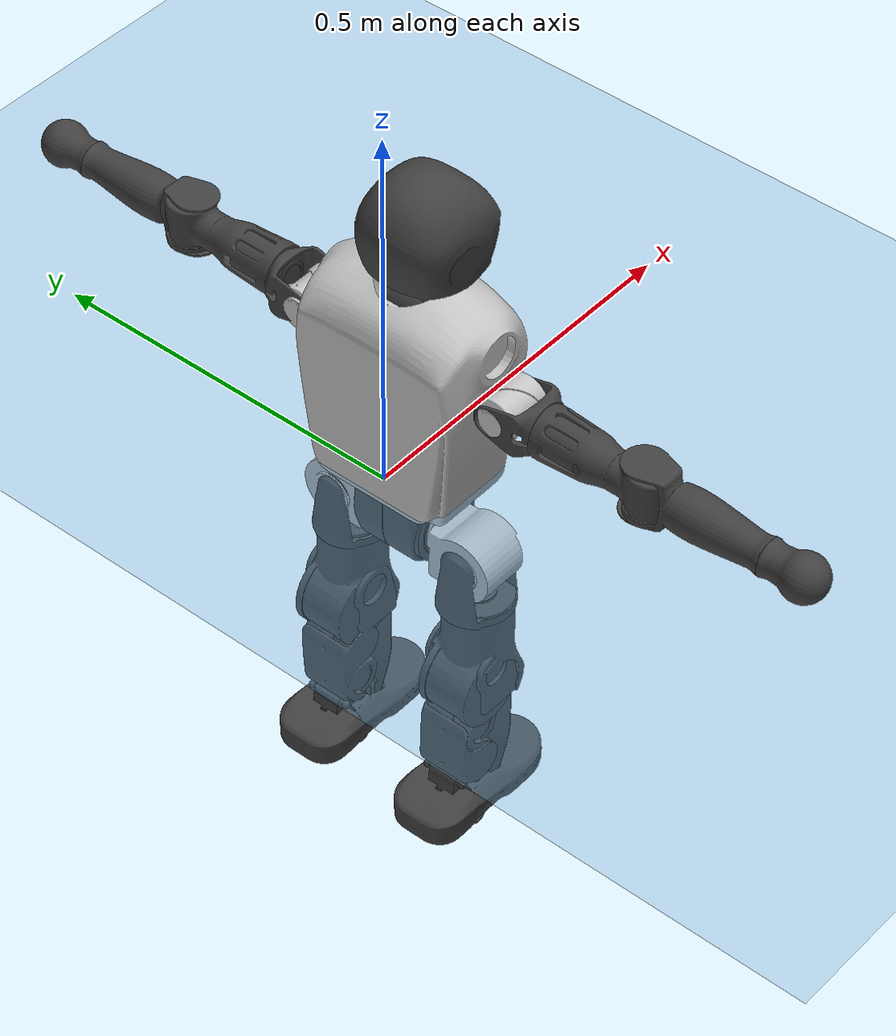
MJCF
<mujoco model="T1">
  <compiler angle="radian" assetdir="assets" balanceinertia="true" inertiafromgeom="false"/>

  <option timestep="0.005" density="1.2" viscosity="2e-05"/>

  <size nkey="1"/>

  <visual>
    <quality shadowsize="8192"/>
    <map shadowclip="0.5"/>
  </visual>

  <default>
    <default class="/">
      <joint armature="0.01" damping="0.01" frictionloss="0.1"/>
      <geom contype="0" conaffinity="0" group="1" solref="-1000 -80"/>
      <site size="0.01 0.005 0.005" group="5"/>
      <general forcelimited="true" biastype="affine" gainprm="25" biasprm="0 -25 -0.6"/>
      <default class="t1">
        <geom rgba="0.25 0.25 0.25 1"/>
        <default class="visual">
          <geom type="mesh" group="2"/>
        </default>
        <default class="collision">
          <geom group="3"/>
        </default>
        <default class="foot">
          <geom size="0.1115 0.05 0.015" type="box" condim="6" group="4" priority="1" solimp="0.015 1 0.015"/>
        </default>
        <default class="reward_collision_sphere">
          <geom group="5" rgba="1 0 0 1"/>
        </default>
      </default>
    </default>
  </default>

  <asset>
    <texture type="skybox" colorspace="auto" name="//unnamed_texture_0" builtin="gradient" rgb1="0.95 0.95 0.95" rgb2="0.95 0.95 0.95" width="100" height="600"/>
    <texture type="2d" colorspace="auto" name="texplane" builtin="checker" rgb1="0.345 0.575 0.748" rgb2="0.345 0.575 0.748" markrgb="1 1 1" width="512" height="512"/>
    <material name="MatPlane" class="/" texture="texplane" texuniform="true" texrepeat="2 2" specular="0.9"/>
    <mesh name="Trunk" class="/" file="Trunk.stl"/>
    <mesh name="H1" class="/" file="H1.stl"/>
    <mesh name="H2" class="/" file="H2.stl"/>
    <mesh name="AL1" class="/" file="AL1.stl"/>
    <mesh name="AL2" class="/" file="AL2.stl"/>
    <mesh name="AL3" class="/" file="AL3.stl"/>
    <mesh name="left_hand_link" class="/" file="left_hand_link.stl"/>
    <mesh name="AR1" class="/" file="AR1.stl"/>
    <mesh name="AR2" class="/" file="AR2.stl"/>
    <mesh name="AR3" class="/" file="AR3.stl"/>
    <mesh name="right_hand_link" class="/" file="right_hand_link.stl"/>
    <mesh name="Waist" class="/" file="Waist.stl"/>
    <mesh name="Hip_Pitch_Left" class="/" file="Hip_Pitch_Left.stl"/>
    <mesh name="Hip_Roll_Left" class="/" file="Hip_Roll_Left.stl"/>
    <mesh name="Hip_Yaw_Left" class="/" file="Hip_Yaw_Left.stl"/>
    <mesh name="Shank_Left" class="/" file="Shank_Left.stl"/>
    <mesh name="Ankle_Cross_Left" class="/" file="Ankle_Cross_Left.stl"/>
    <mesh name="left_foot_link" class="/" file="left_foot_link.stl"/>
    <mesh name="Hip_Pitch_Right" class="/" file="Hip_Pitch_Right.stl"/>
    <mesh name="Hip_Roll_Right" class="/" file="Hip_Roll_Right.stl"/>
    <mesh name="Hip_Yaw_Right" class="/" file="Hip_Yaw_Right.stl"/>
    <mesh name="Shank_Right" class="/" file="Shank_Right.stl"/>
    <mesh name="Ankle_Cross_Right" class="/" file="Ankle_Cross_Right.stl"/>
    <mesh name="right_foot_link" class="/" file="right_foot_link.stl"/>
  </asset>

  <worldbody>
    <geom name="floor" class="/" size="100 100 0.125" type="plane" group="0" material="MatPlane"/>
    <light name="toplight_shadow" class="/" pos="0 0 5" dir="0.0990148 0.0990148 -0.990148" type="directional" ambient="0.04 0.04 0.04" diffuse="0.55 0.55 0.55" specular="0.12 0.12 0.12"/>
    <light name="toplight_fill" class="/" pos="0 0 5" dir="0.0990148 0.0990148 -0.990148" type="directional" castshadow="false" ambient="0.04 0.04 0.04" diffuse="0.3 0.3 0.3" specular="0.08 0.08 0.08"/>
    <body name="trunk" childclass="t1" pos="0.000906644 0.000130062 0.001682" quat="1 3.50739e-05 -2.50911e-06 -1.17995e-05">
      <inertial pos="0.0485053 -0.000393114 0.0755835" quat="0.99985 0.00520969 -0.0102019 0.0129936" mass="7.49173" diaginertia="0.0542122 0.0583971 0.0120405"/>
      <joint name="//unnamed_joint_0" type="free" armature="0" damping="0" frictionloss="0"/>
      <geom name="//unnamed_geom_1" class="visual" rgba="0.76 0.76 0.76 1" mesh="Trunk"/>
      <geom name="//unnamed_geom_2" class="collision" size="0.0644239 0.0858986 0.128848" pos="0.0540624 0 0.0879408" type="box"/>
      <geom name="//unnamed_geom_3" class="reward_collision_sphere" size="0.0987834" pos="0.0540624 0 0.073284"/>
      <geom name="//unnamed_geom_4" class="reward_collision_sphere" size="0.0128848" pos="0.0540624 0.0801616 0"/>
      <geom name="//unnamed_geom_5" class="reward_collision_sphere" size="0.0128848" pos="0.0540624 -0.0801616 0"/>
      <geom name="//unnamed_geom_6" class="reward_collision_sphere" size="0.0128848" pos="0.0540624 0.100909 0.131911"/>
      <geom name="//unnamed_geom_7" class="reward_collision_sphere" size="0.0128848" pos="0.0540624 -0.100909 0.131911"/>
      <site name="imu" pos="-0.00280465 -0.00433812 0.013692" size="0.00858986"/>
      <camera name="track" pos="0 -1.88615 0" quat="0.707107 0.707107 0 0" mode="trackcom"/>
      <camera name="ego_camera" pos="0.109927 0 0.307793" quat="-0.5 -0.5 0.5 0.5"/>
      <body name="H1" pos="0.0524336 -0.00298385 0.178345" quat="0.999999 -0.000537885 0.000490276 0.00113617">
        <inertial pos="-0.00195626 -0.0025715 0.0408776" quat="0.769256 -0.0161985 -0.00452718 0.638719" mass="0.275605" diaginertia="0.000142725 0.000166212 3.16888e-05"/>
        <joint name="AAHead_yaw" pos="0 0 0" axis="0.00116285 0.0020419 0.999997" range="-1.52025 1.61826" armature="0.00935435" damping="0.0178848" frictionloss="0.0772684"/>
        <geom name="//unnamed_geom_8" class="visual" mesh="H1"/>
        <body name="H2" pos="-0.00139416 -0.000482973 0.0444107" quat="1 -0.000366373 0.000332864 7.7498e-05">
          <inertial pos="0.00606904 0.00125159 0.0746224" quat="0.986811 0.114052 -0.0742635 -0.087637" mass="0.392574" diaginertia="0.00123278 0.0013762 0.000357485"/>
          <joint name="Head_pitch" pos="0 0 0" axis="0.00944916 -0.999955 0.000234345" stiffness="0.00686844" range="-1.21151 0.395435" armature="0.00807818" damping="0" frictionloss="0.0863235"/>
          <geom name="//unnamed_geom_9" class="visual" mesh="H2"/>
          <geom name="//unnamed_geom_10" class="collision" size="0.0687189" pos="0.00901041 0 0.0806124"/>
          <geom name="//unnamed_geom_11" class="reward_collision_sphere" size="0.0773087" pos="0.0180208 0 0.073284"/>
        </body>
      </body>
      <body name="AL1" pos="0.0510569 0.100269 0.15969" quat="1 0.000759884 -0.000522844 -0.000243989">
        <inertial pos="0.00226091 0.0451674 0.000325241" quat="0.508476 0.490618 -0.513167 0.487244" mass="0.326441" diaginertia="0.000796164 0.00095368 6.34412e-05"/>
        <joint name="Left_Shoulder_Pitch" pos="0 0 0" axis="-0.00990457 0.999948 -0.00259484" stiffness="0.00396081" range="-3.32299 1.1692" armature="0.00909905" damping="0.00968827" frictionloss="0.083778"/>
        <geom name="//unnamed_geom_12" class="visual" rgba="0.76 0.76 0.76 1" mesh="AL1"/>
        <body name="AL2" pos="0.00315458 0.0453598 0.00191824" quat="1 8.5694e-05 -0.000202062 -0.000111844">
          <inertial pos="0.00685213 0.0369154 -0.00193619" quat="0.48567 0.513026 -0.489073 0.511602" mass="0.100499" diaginertia="0.000240675 0.00026413 3.69388e-05"/>
          <joint name="Left_Shoulder_Roll" pos="0 0 0" axis="-0.999935 0.00913301 0.0068793" range="-1.62507 1.7163" armature="0.00979226" damping="0.0090688" frictionloss="0.0748685"/>
          <geom name="//unnamed_geom_13" class="visual" mesh="AL2"/>
          <body name="AL3" pos="0.00424998 0.058055 0.000687036" quat="1 0.000436116 -0.000191215 0.0002781">
            <inertial pos="-0.000388996 0.0797514 -0.000299004" quat="0.704193 0.709979 0.00557017 0.00328794" mass="0.648613" diaginertia="0.00774578 0.00947706 0.000127197"/>
            <joint name="Left_Elbow_Pitch" pos="0 0 0" axis="-0.00312354 -0.99998 0.00552312" stiffness="0.0173739" range="-2.32867 2.24842" armature="0.00812923" damping="0.0103168" frictionloss="0.0822512"/>
            <geom name="//unnamed_geom_14" class="visual" mesh="AL3"/>
            <geom name="//unnamed_geom_15" class="collision" size="0.0257696 0.0644239" pos="0 0.0471539 0" quat="0.707105 0.707108 0 0" type="cylinder"/>
            <geom name="//unnamed_geom_16" class="reward_collision_sphere" size="0.0309235"/>
            <body name="left_hand_link" pos="0.000904975 0.138494 0.00332372" quat="1 0.000140038 5.47035e-05 9.82816e-06">
              <inertial pos="0.000288562 0.100839 -0.000108862" quat="0.705475 0.708732 0.000324034 -0.00204506" mass="0.211011" diaginertia="0.00507765 0.00606372 4.43817e-05"/>
              <joint name="Left_Elbow_Yaw" pos="0 0 0" axis="0.00594685 0.00404198 0.999974" range="-2.44229 0.0287458" armature="0.00853342" damping="0.000803193" frictionloss="0.083514"/>
              <geom name="//unnamed_geom_17" class="visual" mesh="left_hand_link"/>
              <geom name="//unnamed_geom_18" class="collision" size="0.0257696 0.0751613" pos="0 0.1226 0" quat="0.707105 0.707108 0 0" type="cylinder"/>
              <geom name="//unnamed_geom_19" class="reward_collision_sphere" size="0.0429493"/>
              <geom name="//unnamed_geom_20" class="reward_collision_sphere" size="0.0300645" pos="0 0.103739 0"/>
              <geom name="//unnamed_geom_21" class="reward_collision_sphere" size="0.0300645" pos="0 0.202762 0"/>
            </body>
          </body>
        </body>
      </body>
      <body name="AR1" pos="0.0506749 -0.0976014 0.160884" quat="1 -0.000254968 0.00041069 -0.000592975">
        <inertial pos="-0.00206751 -0.0439871 0.0004799" quat="0.503243 0.493249 -0.505695 0.49772" mass="0.348739" diaginertia="0.000804243 0.000946705 6.28337e-05"/>
        <joint name="Right_Shoulder_Pitch" pos="0 0 0" axis="0.0148652 -0.999884 -0.00319815" stiffness="0.000381545" range="-1.2243 3.29482" armature="0.00900719" damping="0.01349" frictionloss="0.0839572"/>
        <geom name="//unnamed_geom_22" class="visual" rgba="0.76 0.76 0.76 1" mesh="AR1"/>
        <body name="AR2" pos="-0.000340313 -0.0422572 -0.000821084" quat="0.999999 0.000520652 0.000197982 -0.00135425">
          <inertial pos="0.000593522 -0.0329541 -0.00212452" quat="0.50578 0.48255 -0.512298 0.498882" mass="0.105503" diaginertia="0.000244176 0.000268829 3.76214e-05"/>
          <joint name="Right_Shoulder_Roll" pos="0 0 0" axis="-0.999995 0.000829088 -0.00303461" stiffness="0.00878292" range="-1.6853 1.56576" armature="0.00817847" damping="0.0175995" frictionloss="0.0835226"/>
          <geom name="//unnamed_geom_23" class="visual" mesh="AR2"/>
          <body name="AR3" pos="-0.00283147 -0.0576881 0.000853069" quat="1 1.71767e-05 5.08716e-05 -1.65334e-05">
            <inertial pos="-0.000406127 -0.082497 0.00040208" quat="0.710832 0.703357 -0.00265256 -0.000733864" mass="0.626466" diaginertia="0.00740764 0.00988604 0.000128982"/>
            <joint name="Right_Elbow_Pitch" pos="0 0 0" axis="0.000795129 0.999999 -0.00148992" range="-2.27192 2.27499" armature="0.00820985" damping="0.0185806" frictionloss="0.0861828"/>
            <geom name="//unnamed_geom_24" class="visual" mesh="AR3"/>
            <geom name="//unnamed_geom_25" class="collision" size="0.0257696 0.0644239" pos="0 -0.0471539 0" quat="0.707105 0.707108 0 0" type="cylinder"/>
            <geom name="//unnamed_geom_26" class="reward_collision_sphere" size="0.0309235"/>
            <body name="right_hand_link" pos="-0.000903211 -0.138848 0.00204187" quat="0.999999 -0.00106582 -0.00101938 0.000277335">
              <inertial pos="0.000989497 -0.103519 0.000917762" quat="0.70504 0.709163 -0.00222135 -0.00130102" mass="0.210243" diaginertia="0.0047109 0.00601988 4.53086e-05"/>
              <joint name="Right_Elbow_Yaw" pos="0 0 0" axis="-0.00140913 0.00310059 0.999994" range="-0.0326921 2.46457" armature="0.00838669" damping="0.00461074" frictionloss="0.0855287"/>
              <geom name="//unnamed_geom_27" class="visual" mesh="right_hand_link"/>
              <geom name="//unnamed_geom_28" class="collision" size="0.0257696 0.0751613" pos="0 -0.1226 0" quat="0.707105 0.707108 0 0" type="cylinder"/>
              <geom name="//unnamed_geom_29" class="reward_collision_sphere" size="0.0429493"/>
              <geom name="//unnamed_geom_30" class="reward_collision_sphere" size="0.0300645" pos="0 -0.103739 0"/>
              <geom name="//unnamed_geom_31" class="reward_collision_sphere" size="0.0300645" pos="0 -0.202762 0"/>
            </body>
          </body>
        </body>
      </body>
      <body name="Waist" pos="0.0579848 0.00273001 -0.0861551" quat="1 -0.000109035 -0.000503558 0.000449447">
        <inertial pos="0.00181305 4.53414e-05 0.00663485" quat="0.982268 0.00799347 -0.18692 0.0121108" mass="1.6509" diaginertia="0.00312958 0.00386361 0.000991621"/>
        <joint name="Waist" pos="0 0 0" axis="-0.00578281 0.0061139 0.999965" stiffness="0.00080772" range="-1.58309 1.62228" armature="0.00813475" damping="0.0225777" frictionloss="0.0866105"/>
        <geom name="//unnamed_geom_32" class="visual" mesh="Waist"/>
        <body name="Hip_Pitch_Left" pos="0.000465864 0.100677 0.000341321" quat="1 4.29871e-05 -2.07854e-05 -2.71938e-05">
          <inertial pos="-0.00117316 -0.00734193 -0.0138253" quat="0.975201 0.220719 0.0162381 0.00142847" mass="0.616524" diaginertia="0.00102739 0.00104116 0.000255779"/>
          <joint name="Left_Hip_Pitch" pos="0 0 0" axis="-0.0144288 0.999875 -0.00652431" stiffness="0.00985204" range="-1.79347 1.62219" armature="0.00857612" damping="0.0282221" frictionloss="0.0854615"/>
          <geom name="//unnamed_geom_33" class="visual" rgba="0.76 0.76 0.76 1" mesh="Hip_Pitch_Left"/>
          <body name="Hip_Roll_Left" pos="0.00314284 -0.00149669 -0.017287" quat="1 0.000116189 -0.000263568 0.000107952">
            <inertial pos="0.00132222 0.000682149 -0.0419933" quat="0.706263 -0.00160831 -0.0053123 0.707928" mass="0.242367" diaginertia="0.00103267 0.00110698 0.00010603"/>
            <joint name="Left_Hip_Roll" pos="0 0 0" axis="-0.999978 0.00283047 0.00597928" range="-1.52547 0.160958" armature="0.00883717" damping="0.0116955" frictionloss="0.0930622"/>
            <geom name="//unnamed_geom_34" class="visual" mesh="Hip_Roll_Left"/>
            <geom name="//unnamed_geom_35" class="reward_collision_sphere" size="0.0472442"/>
            <body name="Hip_Yaw_Left" pos="-0.00147763 0.00140201 -0.0596445" quat="0.999999 -0.000161382 0.000976213 -0.000626773">
              <inertial pos="-0.00715454 -0.000115414 -0.064702" quat="0.697068 -0.0362208 -0.0317408 0.715386" mass="1.32384" diaginertia="0.015358 0.0190251 0.000566521"/>
              <joint name="Left_Hip_Yaw" pos="0 0 0" axis="-0.000912531 0.00332167 -0.999994" stiffness="0.00695477" range="-1.0132 1.02299" armature="0.00882724" damping="0" frictionloss="0.0859921"/>
              <geom name="//unnamed_geom_36" class="visual" mesh="Hip_Yaw_Left"/>
              <geom name="//unnamed_geom_37" class="collision" size="0.0429493 0.0687189" type="cylinder"/>
              <body name="Shank_Left" pos="-0.0114414 -0.00242585 -0.100302" quat="0.999999 -0.000569007 -0.000579424 -0.000990658">
                <inertial pos="-0.00449254 0.00263053 -0.0910656" quat="0.996917 0.00182792 -0.026106 0.0739755" mass="1.12492" diaginertia="0.0197613 0.0263909 0.000386197"/>
                <joint name="Left_Knee_Pitch" pos="0 0 0" axis="-0.00335575 0.999984 -0.00459359" range="0.0485778 2.32571" armature="0.00955267" damping="0.0129811" frictionloss="0.0908636"/>
                <geom name="//unnamed_geom_38" class="visual" mesh="Shank_Left"/>
                <geom name="//unnamed_geom_39" class="collision" size="0.0429493 0.0644239" pos="0 0 -0.0879408" type="cylinder"/>
                <geom name="//unnamed_geom_40" class="reward_collision_sphere" size="0.0558341"/>
                <body name="Ankle_Cross_Left" pos="-0.00247302 -0.00180054 -0.204448" quat="0.999999 0.000246792 0.000912294 0.00086551">
                  <inertial pos="-0.00354695 0.00258447 -0.00517713" quat="0.442895 0.561248 0.544735 0.438301" mass="0.047075" diaginertia="1.75838e-05 1.87382e-05 2.33655e-06"/>
                  <joint name="Left_Ankle_Pitch" pos="0 0 0" axis="0.0143637 0.999895 0.00202988" range="-0.850341 0.402956" armature="0.00736254" damping="0.0269386" frictionloss="0.0898594"/>
                  <geom name="//unnamed_geom_41" class="visual" mesh="Ankle_Cross_Left"/>
                  <body name="left_foot_link" pos="0.000909665 -0.00160322 -0.00909646" quat="0.999999 0.000604336 -0.00106162 -0.000200048">
                    <inertial pos="-0.00241337 -0.000322973 -0.00517356" quat="0.000473641 0.624028 -0.00277365 0.781397" mass="0.416264" diaginertia="0.00163817 0.00177208 0.000472918"/>
                    <joint name="Left_Ankle_Roll" pos="0 0 0" axis="-0.999893 0.00342639 0.0142457" stiffness="0.00229439" range="-0.488718 0.387884" armature="0.008774" damping="0" frictionloss="0.0861402"/>
                    <geom name="//unnamed_geom_42" class="visual" mesh="left_foot_link"/>
                    <geom name="left_foot" class="foot" size="0.103607 0.0355998 0.0143979" pos="0.00901041 0 -0.0109926"/>
                    <geom name="//unnamed_geom_44" class="reward_collision_sphere" size="0.0446673" pos="0.00901041 0 -0.0109926"/>
                    <geom name="//unnamed_geom_45" class="reward_collision_sphere" size="0.0257696" pos="0.0855989 -0.0216908 -0.0109926"/>
                    <geom name="//unnamed_geom_46" class="reward_collision_sphere" size="0.0257696" pos="-0.0630728 -0.0216908 -0.0109926"/>
                    <site name="left_foot" class="foot" pos="0.00901041 0 -0.0109926" size="0.00858986"/>
                  </body>
                </body>
              </body>
            </body>
          </body>
        </body>
        <body name="Hip_Pitch_Right" pos="-0.00414892 -0.100113 -0.0012893" quat="0.999999 -0.00024171 0.0013237 -0.000552828">
          <inertial pos="5.37996e-05 0.00970119 -0.0129518" quat="0.974466 -0.223834 0.0164688 -0.00659687" mass="0.665165" diaginertia="0.00109831 0.00111329 0.000276798"/>
          <joint name="Right_Hip_Pitch" pos="0 0 0" axis="-0.00186797 -0.999964 -0.00829555" range="-1.55766 1.78023" armature="0.00909511" damping="0.000510805" frictionloss="0.0975761"/>
          <geom name="//unnamed_geom_47" class="visual" rgba="0.76 0.76 0.76 1" mesh="Hip_Pitch_Right"/>
          <body name="Hip_Roll_Right" pos="-0.00088378 -0.00252817 -0.0124974" quat="1 -0.000276412 -0.000111865 -0.000298053">
            <inertial pos="0.000793985 0.00173163 -0.0415667" quat="0.706712 0.00150369 -0.00292959 0.707493" mass="0.238256" diaginertia="0.000981109 0.00113038 0.00010673"/>
            <joint name="Right_Hip_Roll" pos="0 0 0" axis="-0.999987 -0.00307592 0.00397755" range="-0.213399 1.60683" armature="0.00830307" damping="0.0158391" frictionloss="0.086132"/>
            <geom name="//unnamed_geom_48" class="visual" mesh="Hip_Roll_Right"/>
            <geom name="//unnamed_geom_49" class="reward_collision_sphere" size="0.0472442"/>
            <body name="Hip_Yaw_Right" pos="-9.45464e-06 -0.00159765 -0.0617719" quat="1 0.000221841 -0.000121606 0.000280281">
              <inertial pos="-0.00330304 -0.00179896 -0.0634601" quat="0.716086 -0.0244777 -0.0429874 0.696257" mass="1.43486" diaginertia="0.01556 0.0188543 0.000572941"/>
              <joint name="Right_Hip_Yaw" pos="0 0 0" axis="0.0159391 -0.0089824 -0.999833" stiffness="0.0108617" range="-0.975618 1.02059" armature="0.00854433" damping="0.00865097" frictionloss="0.0836004"/>
              <geom name="//unnamed_geom_50" class="visual" mesh="Hip_Yaw_Right"/>
              <geom name="//unnamed_geom_51" class="collision" size="0.0429493 0.0687189" type="cylinder"/>
              <body name="Shank_Right" pos="-0.0131635 0.00219667 -0.100882" quat="1 6.81061e-05 -0.000201453 0.000133424">
                <inertial pos="-0.00428451 0.00232377 -0.0910677" quat="0.999139 -0.00448595 -0.0257803 -0.0322069" mass="1.11668" diaginertia="0.0207057 0.0255486 0.000402735"/>
                <joint name="Right_Knee_Pitch" pos="0 0 0" axis="0.0113218 -0.999925 -0.00467391" stiffness="0.00873646" range="-2.38475 0.00424567" armature="0.00836845" damping="0.0225196" frictionloss="0.0979493"/>
                <geom name="//unnamed_geom_52" class="visual" mesh="Shank_Right"/>
                <geom name="//unnamed_geom_53" class="collision" size="0.0429493 0.0644239" pos="0 0 -0.0879408" type="cylinder"/>
                <geom name="//unnamed_geom_54" class="reward_collision_sphere" size="0.0558341"/>
                <body name="Ankle_Cross_Right" pos="-0.00181598 -8.11259e-05 -0.207153" quat="1 -0.000388998 0.000232225 0.00018379">
                  <inertial pos="-0.00319436 -6.29288e-05 -0.0061557" quat="0.446349 0.556404 0.552783 0.430834" mass="0.0445573" diaginertia="1.68018e-05 1.86815e-05 2.32506e-06"/>
                  <joint name="Right_Ankle_Pitch" pos="0 0 0" axis="-0.00410616 -0.999991 -0.0011249" stiffness="0.0139015" range="-0.348081 0.827331" armature="0.00928195" damping="0" frictionloss="0.0888596"/>
                  <geom name="//unnamed_geom_55" class="visual" mesh="Ankle_Cross_Right"/>
                  <body name="right_foot_link" pos="0.00152237 0.000327131 -0.00660791" quat="0.999999 -0.000553994 0.0012564 4.64299e-05">
                    <inertial pos="0.00192532 0.000372182 -0.00775043" quat="0.000704941 0.62256 -0.00192848 0.78257" mass="0.456171" diaginertia="0.00160875 0.00184256 0.000461274"/>
                    <joint name="Right_Ankle_Roll" pos="0 0 0" axis="-0.999966 0.00818918 -0.000123321" range="-0.454809 0.496307" armature="0.00766339" damping="0.00743343" frictionloss="0.0845872"/>
                    <geom name="//unnamed_geom_56" class="visual" mesh="right_foot_link"/>
                    <geom name="right_foot" class="foot" size="0.105378 0.0411657 0.0129421" pos="0.00901041 0 -0.0109926"/>
                    <geom name="//unnamed_geom_58" class="reward_collision_sphere" size="0.0343594"/>
                    <geom name="//unnamed_geom_59" class="reward_collision_sphere" size="0.0257696" pos="0.00901041 0 -0.0109926"/>
                    <geom name="//unnamed_geom_60" class="reward_collision_sphere" size="0.0257696" pos="0.0855989 0.0216908 -0.0109926"/>
                    <geom name="//unnamed_geom_61" class="reward_collision_sphere" size="0.0257696" pos="-0.0630728 0.0216908 -0.0109926"/>
                    <site name="right_foot" class="foot" pos="0.00901041 0 -0.0109926" size="0.00858986"/>
                  </body>
                </body>
              </body>
            </body>
          </body>
        </body>
      </body>
    </body>
  </worldbody>

  <contact>
    <pair class="/" geom1="floor" geom2="left_foot" name="//unnamed_contact_0"/>
    <pair class="/" geom1="floor" geom2="right_foot" name="//unnamed_contact_1"/>
  </contact>

  <actuator>
    <general name="AAHead_yaw" class="/" joint="AAHead_yaw" forcerange="-5.3778 5.3778" gainprm="22.8523" biasprm="0 -22.8523 -0.555934"/>
    <general name="Head_pitch" class="/" joint="Head_pitch" forcerange="-6.06365 6.06365" gainprm="22.8523" biasprm="0 -22.8523 -0.555934"/>
    <general name="Left_Shoulder_Pitch" class="/" joint="Left_Shoulder_Pitch" forcerange="-15.9958 15.9958" gainprm="22.8523" biasprm="0 -22.8523 -0.555934"/>
    <general name="Left_Shoulder_Roll" class="/" joint="Left_Shoulder_Roll" forcerange="-15.5987 15.5987" gainprm="22.8523" biasprm="0 -22.8523 -0.555934"/>
    <general name="Left_Elbow_Pitch" class="/" joint="Left_Elbow_Pitch" forcerange="-16.2784 16.2784" gainprm="22.8523" biasprm="0 -22.8523 -0.555934"/>
    <general name="Left_Elbow_Yaw" class="/" joint="Left_Elbow_Yaw" forcerange="-15.0165 15.0165" gainprm="22.8523" biasprm="0 -22.8523 -0.555934"/>
    <general name="Right_Shoulder_Pitch" class="/" joint="Right_Shoulder_Pitch" forcerange="-16.0995 16.0995" gainprm="22.8523" biasprm="0 -22.8523 -0.555934"/>
    <general name="Right_Shoulder_Roll" class="/" joint="Right_Shoulder_Roll" forcerange="-15.1847 15.1847" gainprm="22.8523" biasprm="0 -22.8523 -0.555934"/>
    <general name="Right_Elbow_Pitch" class="/" joint="Right_Elbow_Pitch" forcerange="-14.2784 14.2784" gainprm="22.8523" biasprm="0 -22.8523 -0.555934"/>
    <general name="Right_Elbow_Yaw" class="/" joint="Right_Elbow_Yaw" forcerange="-16.0717 16.0717" gainprm="22.8523" biasprm="0 -22.8523 -0.555934"/>
    <general name="Waist" class="/" joint="Waist" forcerange="-28.6009 28.6009" gainprm="22.8523" biasprm="0 -22.8523 -0.555934"/>
    <general name="Left_Hip_Pitch" class="/" joint="Left_Hip_Pitch" forcerange="-39.6338 39.6338" gainprm="22.8523" biasprm="0 -22.8523 -0.555934"/>
    <general name="Left_Hip_Roll" class="/" joint="Left_Hip_Roll" forcerange="-27.1861 27.1861" gainprm="22.8523" biasprm="0 -22.8523 -0.555934"/>
    <general name="Left_Hip_Yaw" class="/" joint="Left_Hip_Yaw" forcerange="-28.2727 28.2727" gainprm="22.8523" biasprm="0 -22.8523 -0.555934"/>
    <general name="Left_Knee_Pitch" class="/" joint="Left_Knee_Pitch" forcerange="-53.1677 53.1677" gainprm="22.8523" biasprm="0 -22.8523 -0.555934"/>
    <general name="Left_Ankle_Pitch" class="/" joint="Left_Ankle_Pitch" forcerange="-17.7893 17.7893" gainprm="22.8523" biasprm="0 -22.8523 -0.555934"/>
    <general name="Left_Ankle_Roll" class="/" joint="Left_Ankle_Roll" forcerange="-12.6623 12.6623" gainprm="22.8523" biasprm="0 -22.8523 -0.555934"/>
    <general name="Right_Hip_Pitch" class="/" joint="Right_Hip_Pitch" forcerange="-38.8482 38.8482" gainprm="22.8523" biasprm="0 -22.8523 -0.555934"/>
    <general name="Right_Hip_Roll" class="/" joint="Right_Hip_Roll" forcerange="-27.3371 27.3371" gainprm="22.8523" biasprm="0 -22.8523 -0.555934"/>
    <general name="Right_Hip_Yaw" class="/" joint="Right_Hip_Yaw" forcerange="-28.1883 28.1883" gainprm="22.8523" biasprm="0 -22.8523 -0.555934"/>
    <general name="Right_Knee_Pitch" class="/" joint="Right_Knee_Pitch" forcerange="-56.7177 56.7177" gainprm="22.8523" biasprm="0 -22.8523 -0.555934"/>
    <general name="Right_Ankle_Pitch" class="/" joint="Right_Ankle_Pitch" forcerange="-15.454 15.454" gainprm="22.8523" biasprm="0 -22.8523 -0.555934"/>
    <general name="Right_Ankle_Roll" class="/" joint="Right_Ankle_Roll" forcerange="-12.8673 12.8673" gainprm="22.8523" biasprm="0 -22.8523 -0.555934"/>
  </actuator>

  <sensor>
    <gyro site="imu" name="imu_angular_velocity"/>
    <velocimeter site="imu" name="imu_linear_velocity"/>
    <framelinvel objtype="site" objname="left_foot" name="left_foot_global_linear_velocity"/>
    <framelinvel objtype="site" objname="right_foot" name="right_foot_global_linear_velocity"/>
  </sensor>

  <keyframe>
    <key name="home" qpos="0 0 0.6385 1 0 0 0 0 0 0 1.4 0 -0.4 0 -1.4 0 0.4 0 -0.4 0 0 0.8 -0.4 0 0.4 0 0 -0.8 0.4 0"/>
  </keyframe>
</mujoco>
